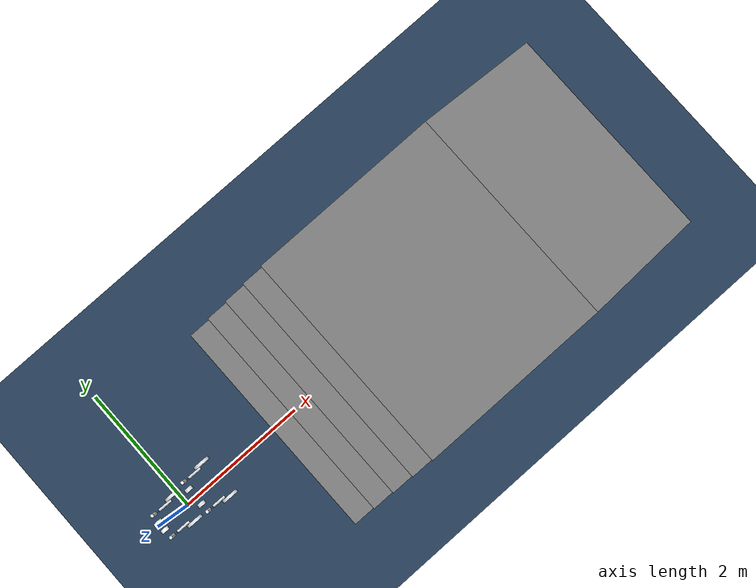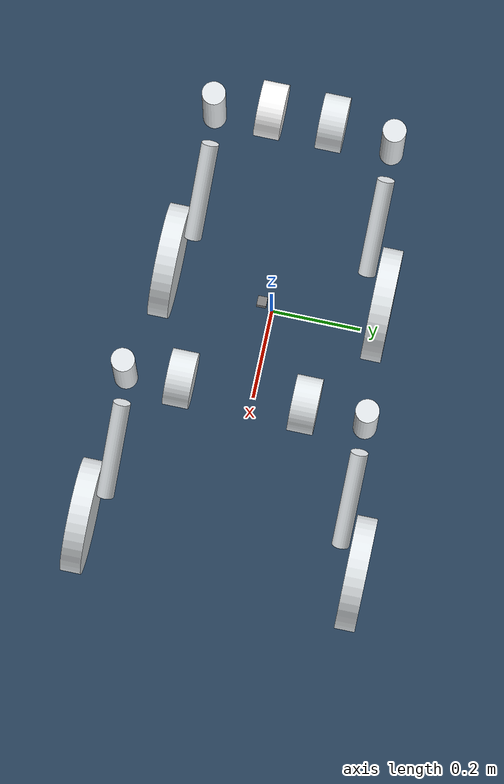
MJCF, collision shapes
<mujoco model="mdog scene">
  <include file="mdog.xml"/>
  <compiler angle="radian" meshdir="meshes/"/>

  <statistic center="0 0 0.1" extent="0.8"/>

  <visual>
    <headlight diffuse="0.6 0.6 0.6" ambient="0.3 0.3 0.3" specular="0 0 0"/>
    <rgba haze="0.15 0.25 0.35 1"/>
    <global azimuth="120" elevation="-20"/>
  </visual>

  <asset>
    <mesh name="stair" file="stair.STL" />
  </asset>

  <asset>
    <texture type="skybox" builtin="gradient" rgb1="0.3 0.5 0.7" rgb2="0 0 0" width="512" height="3072"/>
    <texture type="2d" name="groundplane" builtin="checker" mark="edge" rgb1="0.2 0.3 0.4" rgb2="0.1 0.2 0.3"
      markrgb="0.8 0.8 0.8" width="300" height="300"/>
    <material name="groundplane" texture="groundplane" texuniform="true" texrepeat="5 5" reflectance="0.2"/>
  </asset>

  <worldbody>
    <light pos="0 0 1.5" dir="0 0 -1" directional="true"/>
    <geom name="floor" size="0 0 0.05" type="plane" material="groundplane" friction="0.8 0.05 0.0001"/>

    <!-- unitree-stair -->

    <!-- slope_stair -->

    <body name="slope_stair2" pos="7 0 0" quat="0 0 0 -1.0">
     <geom pos="0 0 0.375" type="box"  size="1.072 1.75 0.01" quat="0.984 0 -0.178 0"/>
     <geom pos="2.5 0 0.75" type="box"  size="1.5 1.75 0.01" quat="1 0 0 0"/>
     <geom pos="3.825 0 0.375" type="box"  size="0.175 1.75 0.375" quat="1 0 0 0"/>
     <geom pos="4.175 0 0.3" type="box"  size="0.175 1.75 0.3" quat="1 0 0 0"/>
     <geom pos="4.525 0 0.225" type="box"  size="0.175 1.75 0.225" quat="1 0 0 0"/>
     <geom pos="4.875 0 0.150" type="box"  size="0.175 1.75 0.150" quat="1 0 0 0"/>
     <geom pos="5.225 0 0.075" type="box"  size="0.175 1.75 0.075" quat="1 0 0 0"/>
    </body>

  </worldbody>
</mujoco>

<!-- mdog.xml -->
<mujoco model="mdog">
  <compiler angle="radian" meshdir="meshes"/>
  <option cone="elliptic" impratio="100"/>

  <asset>
    <mesh name="base" file="base.STL"/>
    <mesh name="FL_hip" file="FL_hip.STL"/>
    <mesh name="hip_joint_collision" file="hip_joint_collision.STL"/>
    <mesh name="FL_thigh" file="FL_thigh.STL"/>
    <mesh name="FL_calf" file="FL_calf.STL"/>
    <mesh name="FL_wheel" file="FL_wheel.STL"/>
    <mesh name="wheel_collision" file="wheel_collision.STL"/>
    <mesh name="FR_hip" file="FR_hip.STL"/>
    <mesh name="FR_thigh" file="FR_thigh.STL"/>
    <mesh name="FR_calf" file="FR_calf.STL"/>
    <mesh name="FR_wheel" file="FR_wheel.STL"/>
    <mesh name="RL_hip" file="RL_hip.STL"/>
    <mesh name="RL_thigh" file="RL_thigh.STL"/>
    <mesh name="RL_calf" file="RL_calf.STL"/>
    <mesh name="RL_wheel" file="RL_wheel.STL"/>
    <mesh name="RR_thigh" file="RR_thigh.STL"/>
    <mesh name="RR_calf" file="RR_calf.STL"/>
    <mesh name="RR_wheel" file="RR_wheel.STL"/>
    <mesh name="RR_hip" file="RR_hip.STL"/>
  </asset>

  <worldbody>
   <body name="base" pos="0 0 0.7">
      <inertial pos="0.057167816149424 0.00140995876000797 0.00294093172425891" quat="1 0 0 0" mass="14.8685164134682" diaginertia="0.0525783631576348 0.0609883581650755 0.0956292215158308"/>
      <freejoint/>
      <geom type="mesh" contype="0" conaffinity="0" group="1" density="0" rgba="0.898039 0.917647 0.929412 1" mesh="base"/>
      <site name="imu" pos="0.10557 0 -0.03232" type="box" size="0.01 0.01 0.01"/>

      <body name="FL_hip" pos="0.3 0.131 0.057" quat="0.499998 0.5 0.5 -0.500002">
        <inertial pos="0.0682225 -3.58205e-05 -0.000620987" quat="0.493746 0.503421 -0.496325 0.506403" mass="1.46066" diaginertia="0.00225412 0.00149556 0.00131998"/>
        <joint name="FL_hip_joint" pos="0 0 0" axis="1 0 0" range="-0.61 1.74" actuatorfrcrange="-35 35"/>
        <geom type="mesh" contype="0" conaffinity="0" group="1" density="0" rgba="0.898039 0.917647 0.929412 1" mesh="FL_hip"/>
        <geom pos="0.0685 0 0" quat="0.707388 0.706825 0 0" type="mesh" rgba="0.898039 0.917647 0.929412 1" mesh="hip_joint_collision"/>
        <body name="FL_thigh" pos="0.0685 0 -0.0237" quat="0.499998 -0.5 0.5 0.500002">
          <inertial pos="0.0719465 -0.038564 -0.00530989" quat="0.674654 0.738132 0.00057673 0.00185808" mass="2.03219" diaginertia="0.0103358 0.00905989 0.0016502"/>
          <joint name="FL_thigh_joint" pos="0 0 0" axis="1 0 0" range="-3 3" actuatorfrcrange="-35 35"/>
          <geom type="mesh" contype="0" conaffinity="0" group="1" density="0" rgba="0.898039 0.917647 0.929412 1" mesh="FL_thigh"/>
          <geom size="0.025 0.11" pos="0.1035 -0.15 -0.02" quat="0.707388 0.706825 0 0" type="cylinder" rgba="0.898039 0.917647 0.929412 1"/>
          <body name="FL_calf" pos="0.1035 -0.3 0">
            <inertial pos="0.0224222 -0.190809 0.220812" quat="0.959177 0.282752 -0.00162514 0.00530558" mass="1.37462" diaginertia="0.00583517 0.00535362 0.000870122"/>
            <joint name="FL_calf_joint" pos="0 0 0" axis="1 0 0" range="-1.68 0" actuatorfrcrange="-35 35"/>
            <geom type="mesh" contype="0" conaffinity="0" group="1" density="0" rgba="0.898039 0.917647 0.929412 1" mesh="FL_calf"/>
            <geom size="0.019 0.11" pos="0 -0.07 0.12" quat="0.962112 0.272654 0 0" type="cylinder" rgba="0.898039 0.917647 0.929412 1"/>
            <body name="FL_wheel" pos="0.05605 -0.23278 0.25375">
              <inertial pos="-0.00864808 3.42868e-05 -1.93812e-05" quat="0.966508 -0.256638 -4.09492e-06 -1.54216e-05" mass="0.944932" diaginertia="0.00787981 0.00418927 0.0041872"/>
              <joint name="FL_ankle_joint" pos="0 0 0" axis="1 0 0" range="-10000 10000" actuatorfrcrange="-15 15" damping="0"/>
              <geom type="mesh" contype="0" conaffinity="0" group="1" density="0" rgba="0.898039 0.917647 0.929412 1" mesh="FL_wheel"/>
              <geom pos="0.0115 0 0" quat="0.707388 0 0 0.706825" type="mesh" rgba="0.898039 0.917647 0.929412 1" mesh="wheel_collision"/>
            </body>
          </body>
        </body>
      </body>

      <body name="FR_hip" pos="0.3 -0.129 0.057" quat="0.499998 0.5 0.5 -0.500002">
        <inertial pos="0.0682232 -1.63553e-05 0.000620987" quat="0.503455 0.499315 -0.501345 0.495853" mass="1.46066" diaginertia="0.00225412 0.00149495 0.00132059"/>
        <joint name="FR_hip_joint" pos="0 0 0" axis="1 0 0" range="-1.74 0.61" actuatorfrcrange="-35 35" ref="0"/>
        <geom type="mesh" contype="0" conaffinity="0" group="1" density="0" rgba="0.898039 0.917647 0.929412 1" mesh="FR_hip"/>
        <geom pos="0.0685 0 0" quat="0.707388 0.706825 0 0" type="mesh" rgba="0.898039 0.917647 0.929412 1" mesh="hip_joint_collision"/>
        <body name="FR_thigh" pos="0.0685 0 0.0237" quat="0.499998 0.5 -0.5 0.500002">
          <inertial pos="0.0666502 -0.0465952 0.00638495" quat="0.739183 0.673505 0.000580717 -0.000191505" mass="2.33969" diaginertia="0.0138568 0.0123878 0.00186035"/>
          <joint name="FR_thigh_joint" pos="0 0 0" axis="1 0 0" range="-3 3" actuatorfrcrange="-35 35"/>
          <geom type="mesh" contype="0" conaffinity="0" group="1" density="0" rgba="0.898039 0.917647 0.929412 1" mesh="FR_thigh"/>
          <geom size="0.025 0.11" pos="0.1035 -0.15 0.02" quat="0.707388 0.706825 0 0" type="cylinder" rgba="0.898039 0.917647 0.929412 1"/>
          <body name="FR_calf" pos="0.104 -0.3 0">
            <inertial pos="0.0179335 -0.167391 -0.201007" quat="0.959789 -0.28067 0.00130295 0.00525732" mass="1.71714" diaginertia="0.0104767 0.00996235 0.000942698"/>
            <joint name="FR_calf_joint" pos="0 0 0" axis="1 0 0" range="0 1.68" actuatorfrcrange="-35 35"/>
            <geom type="mesh" contype="0" conaffinity="0" group="1" density="0" rgba="0.898039 0.917647 0.929412 1" mesh="FR_calf"/>
            <geom size="0.019 0.11" pos="0 -0.07 -0.12" quat="0.962112 -0.272654 0 0" type="cylinder" rgba="0.898039 0.917647 0.929412 1"/>
            <body name="FR_wheel" pos="0.05605 -0.23278 -0.25375">
              <inertial pos="-0.00864808 -3.40163e-05 -1.98531e-05" quat="0.965913 0.258867 -4.13063e-06 1.54126e-05" mass="0.944932" diaginertia="0.00787981 0.00418927 0.0041872"/>
              <joint name="FR_ankle_joint" pos="0 0 0" axis="1 0 0" range="-10000 10000" actuatorfrcrange="-15 15" damping="0"/>
              <geom type="mesh" contype="0" conaffinity="0" group="1" density="0" rgba="0.898039 0.917647 0.929412 1" mesh="FR_wheel"/>
              <geom pos="0.0115 0 0" quat="0.707388 0 0 0.706825" type="mesh" rgba="0.898039 0.917647 0.929412 1" mesh="wheel_collision"/>
            </body>
          </body>
        </body>
      </body>

      <body name="RL_hip" pos="-0.2207 0.066 -0.0115" quat="-2.59734e-06 -2.59735e-06 0.707108 0.707105">
        <inertial pos="0.0626794 5.32079e-05 0.000742495" quat="0.509203 0.493969 -0.505971 0.490612" mass="1.31735" diaginertia="0.00212293 0.00133411 0.00124221"/>
        <joint name="RL_hip_joint" pos="0 0 0" axis="1 0 0" range="-1.5 1.5" actuatorfrcrange="-35 35"/>
        <geom type="mesh" contype="0" conaffinity="0" group="1" density="0" rgba="0.898039 0.917647 0.929412 1" mesh="RL_hip"/>
        <geom pos="0.0685 0 0" quat="0.707388 0.706825 0 0" type="mesh" rgba="0.898039 0.917647 0.929412 1" mesh="hip_joint_collision"/>
        <body name="RL_thigh" pos="0.0685 0 0.0237" quat="0.707105 0 -0.707108 0">
          <inertial pos="0.0719465 -0.038564 -0.00530989" quat="0.674654 0.738132 0.00057673 0.00185808" mass="2.03219" diaginertia="0.0103358 0.00905989 0.00165021"/>
          <joint name="RL_thigh_joint" pos="0 0 0" axis="1 0 0" range="-3 3" actuatorfrcrange="-35 35"/>
          <geom type="mesh" contype="0" conaffinity="0" group="1" density="0" rgba="0.898039 0.917647 0.929412 1" mesh="RL_thigh"/>
          <geom size="0.025 0.11" pos="0.1035 -0.15 -0.02" quat="0.707388 0.706825 0 0" type="cylinder" rgba="0.898039 0.917647 0.929412 1"/>
          <body name="RL_calf" pos="0.1035 -0.3 0">
            <inertial pos="0.0223883 -0.190541 0.220516" quat="0.959177 0.282752 -0.00162526 0.005306" mass="1.37633" diaginertia="0.00583523 0.00535372 0.000870218"/>
            <joint name="RL_calf_joint" pos="0 0 0" axis="1 0 0" range="-1.68 0" actuatorfrcrange="-35 35"/>
            <geom type="mesh" contype="0" conaffinity="0" group="1" density="0" rgba="0.898039 0.917647 0.929412 1" mesh="RL_calf"/>
            <geom size="0.019 0.11" pos="0 -0.07 0.12" quat="0.962112 0.272654 0 0" type="cylinder" rgba="0.898039 0.917647 0.929412 1"/>
            <body name="RL_wheel" pos="0.05605 -0.23278 0.25375">
              <inertial pos="-0.00864808 -1.53688e-05 3.62618e-05" quat="0.55408 0.832464 1.32817e-05 -8.84019e-06" mass="0.944932" diaginertia="0.00787981 0.00418927 0.0041872"/>
              <joint name="RL_ankle_joint" pos="0 0 0" axis="1 0 0" range="-10000 10000" actuatorfrcrange="-15 15" damping="0"/>
              <geom type="mesh" contype="0" conaffinity="0" group="1" density="0" rgba="0.898039 0.917647 0.929412 1" mesh="RL_wheel"/>
              <geom pos="0.0115 0 0" quat="0.707388 0 0 0.706825" type="mesh" rgba="0.898039 0.917647 0.929412 1" mesh="wheel_collision"/>
            </body>
          </body>
        </body>
      </body>

      <body name="RR_hip" pos="-0.2207 -0.064 -0.0115" quat="-2.59734e-06 -2.59735e-06 0.707108 0.707105">
        <inertial pos="0.06268 4.6438e-06 -0.00074249" quat="0.495023 0.501658 -0.499329 0.503947" mass="1.3173" diaginertia="0.00212294 0.00133348 0.00124288"/>
        <joint name="RR_hip_joint" pos="0 0 0" axis="1 0 0" range="-1.5 1.5" actuatorfrcrange="-35 35"/>
        <geom type="mesh" contype="0" conaffinity="0" group="1" density="0" rgba="1 1 1 1" mesh="RR_hip"/>
        <geom pos="0.0685 0 0" quat="0.707388 0.706825 0 0" type="mesh" rgba="1 1 1 1" mesh="hip_joint_collision"/>
        <body name="RR_thigh" pos="0.0685 0 -0.0237" quat="0.707105 0 0.707108 0">
          <inertial pos="0.0666502 -0.0465952 0.00638495" quat="0.739183 0.673505 0.000580717 -0.000191505" mass="2.33969" diaginertia="0.0138568 0.0123878 0.00186035"/>
          <joint name="RR_thigh_joint" pos="0 0 0" axis="1 0 0" range="-3 3" actuatorfrcrange="-35 35"/>
          <geom type="mesh" contype="0" conaffinity="0" group="1" density="0" rgba="0.898039 0.917647 0.929412 1" mesh="RR_thigh"/>
          <geom size="0.025 0.11" pos="0.1035 -0.15 0.02" quat="0.707388 0.706825 0 0" type="cylinder" rgba="0.898039 0.917647 0.929412 1"/>
          <body name="RR_calf" pos="0.104 -0.3 0">
            <inertial pos="0.0179054 -0.167154 -0.200738" quat="0.959789 -0.28067 0.00130313 0.00525797" mass="1.71926" diaginertia="0.0104767 0.00996248 0.000942821"/>
            <joint name="RR_calf_joint" pos="0 0 0" axis="1 0 0" range="0 1.68" actuatorfrcrange="-35 35"/>
            <geom type="mesh" contype="0" conaffinity="0" group="1" density="0" rgba="0.898039 0.917647 0.929412 1" mesh="RR_calf"/>
            <geom size="0.019 0.11" pos="0 -0.07 -0.12" quat="0.962112 -0.272654 0 0" type="cylinder" rgba="0.898039 0.917647 0.929412 1"/>
            <body name="RR_wheel" pos="0.05605 -0.23278 -0.25375">
              <inertial pos="-0.0086481 2.472e-05 3.0661e-05" quat="0.904159 0.427195 6.81634e-06 -1.44268e-05" mass="0.94493" diaginertia="0.0078798 0.00418923 0.00418717"/>
              <joint name="RR_ankle_joint" pos="0 0 0" axis="1 0 0" range="-10000 10000" actuatorfrcrange="-15 15" damping="0"/>
              <geom type="mesh" contype="0" conaffinity="0" group="1" density="0" rgba="0.89804 0.91765 0.92941 1" mesh="RR_wheel"/>
              <geom pos="0.0115 0 0" quat="0.707388 0 0 0.706825" type="mesh" rgba="0.89804 0.91765 0.92941 1" mesh="wheel_collision"/>
            </body>
          </body>
        </body>
      </body>
    </body>
  </worldbody>

  <actuator>
    <motor name="FL_hip" joint="FL_hip_joint" />
    <motor name="FL_thigh" joint="FL_thigh_joint" />
    <motor name="FL_calf" joint="FL_calf_joint" />
    <motor name="FL_ankle" joint="FL_ankle_joint" />

    <motor name="FR_hip" joint="FR_hip_joint" />
    <motor name="FR_thigh" joint="FR_thigh_joint" />
    <motor name="FR_calf" joint="FR_calf_joint" />
    <motor name="FR_ankle" joint="FR_ankle_joint" />

    <motor name="RL_hip" joint="RL_hip_joint" />
    <motor name="RL_thigh" joint="RL_thigh_joint" />
    <motor name="RL_calf" joint="RL_calf_joint" />
    <motor name="RL_ankle" joint="RL_ankle_joint" />

    <motor name="RR_hip" joint="RR_hip_joint" />
    <motor name="RR_thigh" joint="RR_thigh_joint" />
    <motor name="RR_calf" joint="RR_calf_joint" />
    <motor name="RR_ankle" joint="RR_ankle_joint" />

  </actuator>

  <sensor>
    <jointpos name="FL_hip_pos" joint="FL_hip_joint" noise="1"/>
    <jointpos name="FL_thigh_pos" joint="FL_thigh_joint" noise="1"/>
    <jointpos name="FL_calf_pos" joint="FL_calf_joint" noise="1"/>
    <jointpos name="FL_ankle_pos" joint="FL_ankle_joint" noise="1"/>

    <jointpos name="FR_hip_pos" joint="FR_hip_joint" noise="1"/>
    <jointpos name="FR_thigh_pos" joint="FR_thigh_joint" noise="1"/>
    <jointpos name="FR_calf_pos" joint="FR_calf_joint" noise="1"/>
    <jointpos name="FR_ankle_pos" joint="FR_ankle_joint" noise="1"/>

    <jointpos name="RL_hip_pos" joint="RL_hip_joint" noise="1"/>
    <jointpos name="RL_thigh_pos" joint="RL_thigh_joint" noise="1"/>
    <jointpos name="RL_calf_pos" joint="RL_calf_joint" noise="1"/>
    <jointpos name="RL_ankle_pos" joint="RL_ankle_joint" noise="1"/>

    <jointpos name="RR_hip_pos" joint="RR_hip_joint" noise="1"/>
    <jointpos name="RR_thigh_pos" joint="RR_thigh_joint" noise="1"/>
    <jointpos name="RR_calf_pos" joint="RR_calf_joint" noise="1"/>
    <jointpos name="RR_ankle_pos" joint="RR_ankle_joint" noise="1"/>

    <jointvel name="FL_hip_vel" joint="FL_hip_joint" noise="1"/>
    <jointvel name="FL_thigh_vel" joint="FL_thigh_joint" noise="1"/>
    <jointvel name="FL_calf_vel" joint="FL_calf_joint" noise="1"/>
    <jointvel name="FL_ankle_vel" joint="FL_ankle_joint" noise="1"/>

    <jointvel name="FR_hip_vel" joint="FR_hip_joint" noise="1"/>
    <jointvel name="FR_thigh_vel" joint="FR_thigh_joint" noise="1"/>
    <jointvel name="FR_calf_vel" joint="FR_calf_joint" noise="1"/>
    <jointvel name="FR_ankle_vel" joint="FR_ankle_joint" noise="1"/>

    <jointvel name="RL_hip_vel" joint="RL_hip_joint" noise="1"/>
    <jointvel name="RL_thigh_vel" joint="RL_thigh_joint" noise="1"/>
    <jointvel name="RL_calf_vel" joint="RL_calf_joint" noise="1"/>
    <jointvel name="RL_ankle_vel" joint="RL_ankle_joint" noise="1"/>

    <jointvel name="RR_hip_vel" joint="RR_hip_joint" noise="1"/>
    <jointvel name="RR_thigh_vel" joint="RR_thigh_joint" noise="1"/>
    <jointvel name="RR_calf_vel" joint="RR_calf_joint" noise="1"/>
    <jointvel name="RR_ankle_vel" joint="RR_ankle_joint" noise="1"/>

    <jointactuatorfrc name="FL_hip_torque" joint="FL_hip_joint" noise="1"/>
    <jointactuatorfrc name="FL_thigh_torque" joint="FL_thigh_joint" noise="1"/>
    <jointactuatorfrc name="FL_calf_torque" joint="FL_calf_joint" noise="1"/>
    <jointactuatorfrc name="FL_ankle_torque" joint="FL_ankle_joint" noise="1"/>

    <jointactuatorfrc name="FR_hip_torque" joint="FR_hip_joint" noise="1"/>
    <jointactuatorfrc name="FR_thigh_torque" joint="FR_thigh_joint" noise="1"/>
    <jointactuatorfrc name="FR_calf_torque" joint="FR_calf_joint" noise="1"/>
    <jointactuatorfrc name="FR_ankle_torque" joint="FR_ankle_joint" noise="1"/>

    <jointactuatorfrc name="RL_hip_torque" joint="RL_hip_joint" noise="1"/>
    <jointactuatorfrc name="RL_thigh_torque" joint="RL_thigh_joint" noise="1"/>
    <jointactuatorfrc name="RL_calf_torque" joint="RL_calf_joint" noise="1"/>
    <jointactuatorfrc name="RL_ankle_torque" joint="RL_ankle_joint" noise="1"/>

    <jointactuatorfrc name="RR_hip_torque" joint="RR_hip_joint" noise="1"/>
    <jointactuatorfrc name="RR_thigh_torque" joint="RR_thigh_joint" noise="1"/>
    <jointactuatorfrc name="RR_calf_torque" joint="RR_calf_joint" noise="1"/>
    <jointactuatorfrc name="RR_ankle_torque" joint="RR_ankle_joint" noise="1"/>

    <framequat name="imu_quat" objtype="site" objname="imu" noise="1"/>
    <gyro name="imu_gyro" site="imu" noise="0.0"/>
    <accelerometer name="imu_acc" site="imu" />

    <framepos name="frame_pos" objtype="site" objname="imu" />
    <framelinvel name="frame_vel" objtype="site" objname="imu" />
  </sensor>
</mujoco>
